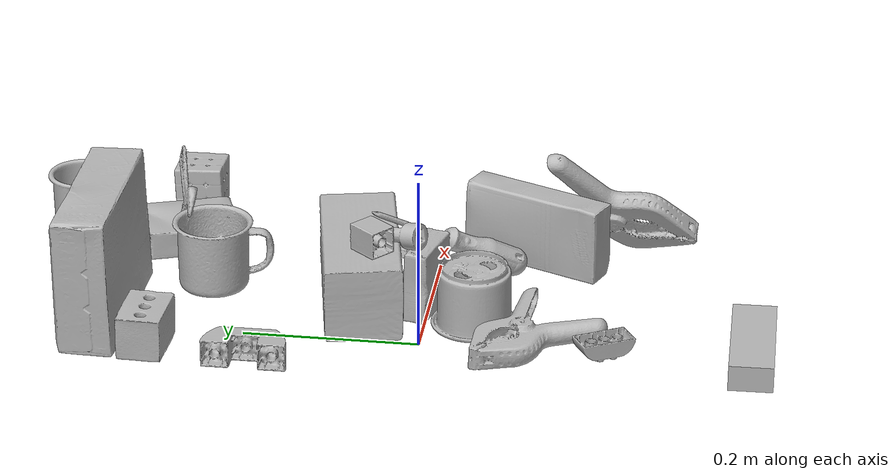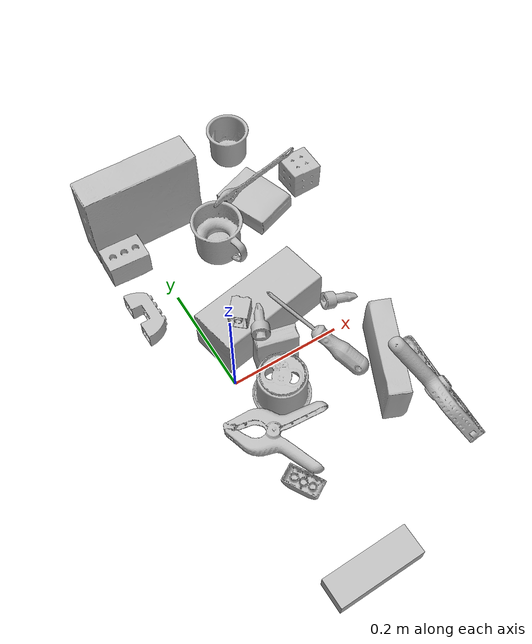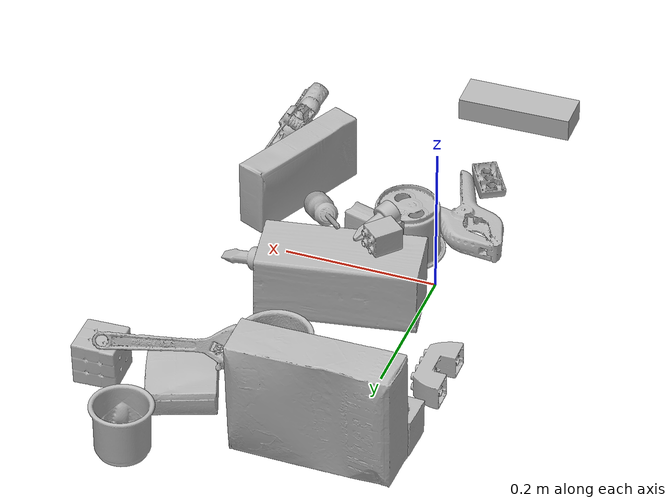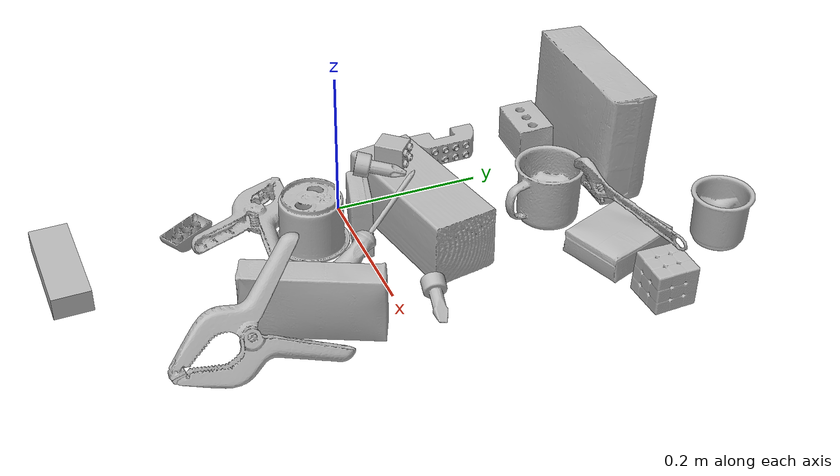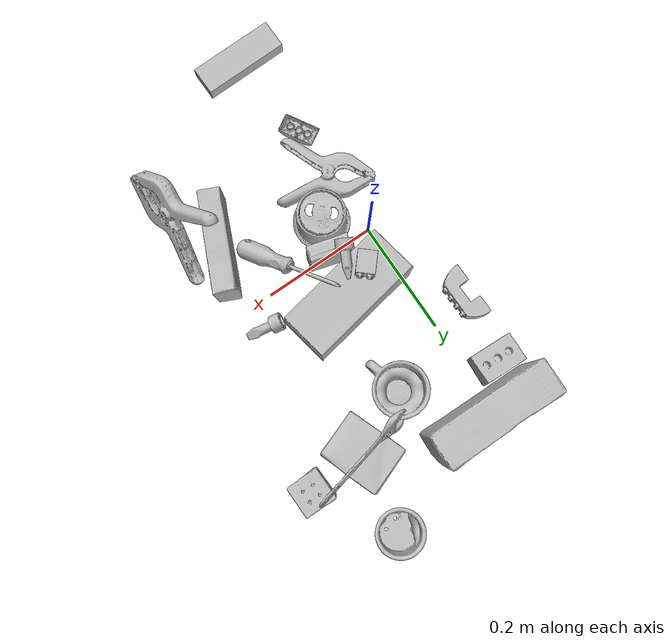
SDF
<sdf version="1.4">
  <world name="default">
    <light name="light1" type="point">
      <pose>0 0 1 0 0 0</pose>
      <diffuse>3 3 3 1</diffuse>
      <specular>3 3 3 1</specular>
    </light>
    <light name="light2" type="point">
      <pose>0 0.5 2 0 0 0</pose>
      <diffuse>1 1 1 1</diffuse>
      <specular>1 1 1 1</specular>
    </light>
    <light name="light3" type="point">
      <pose>0 0.5 2 0 0 0</pose>
      <diffuse>3 3 3 1</diffuse>
      <specular>3 3 3 1</specular>
    </light>
    <scene>
      <ambient>0.7 0.7 0.7</ambient>
    </scene>
    <model name="box21">
      <link name="link_box21">
        <collision name="default">
          <geometry>
            <mesh>
              <uri>model://cracker_box/collision_meshes/collision.obj</uri>
              <scale>1.0 1.0 1.0</scale>
            </mesh>
          </geometry>
          <surface>
            <friction>
              <ode>
                <mu>0.5</mu>
                <mu2>0.5</mu2>
              </ode>
            </friction>
          <contact>
        <ode>
            <max_vel>0</max_vel>
            <min_depth>0.0001</min_depth>
            <kp>1e8</kp>
        </ode>
    </contact></surface>
        </collision>
        <visual name="default">
          <geometry>
            <mesh>
              <uri>model://cracker_box/visual_meshes/visual.dae</uri>
              <scale>1.0 1.0 1.0</scale>
            </mesh>
          </geometry>
        </visual>
        <inertial>
          <mass>1.391977071762085</mass>
          <pose>0.0009464159375056624 0.0002543424488976598 -0.0017029533628374338 -0.000316207597302205 -0.011106489600460226 0.002546794768991959</pose>
          <inertia>
            <ixx>0.0035405685</ixx>
            <iyy>0.0058461735</iyy>
            <izz>0.008343027</izz>
            <ixy>0</ixy>
            <ixz>0</ixz>
            <iyz>0</iyz>
          </inertia>
        </inertial>
      </link>
      <pose>0.0231715627014637 0.3667680323123932 0.08213848620653152 -1.6031941436563448 0.003786476061068361 -0.01660925112276112</pose>
    </model>
    <model name="box22">
      <link name="link_box22">
        <collision name="default">
          <geometry>
            <mesh>
              <uri>model://pudding_box/collision_meshes/collision.obj</uri>
              <scale>1.0 1.0 1.0</scale>
            </mesh>
          </geometry>
          <surface>
            <friction>
              <ode>
                <mu>0.5</mu>
                <mu2>0.5</mu2>
              </ode>
            </friction>
          <contact>
        <ode>
            <max_vel>0</max_vel>
            <min_depth>0.0001</min_depth>
            <kp>1e8</kp>
        </ode>
    </contact></surface>
        </collision>
        <visual name="default">
          <geometry>
            <mesh>
              <uri>model://pudding_box/visual_meshes/visual.dae</uri>
              <scale>1.0 1.0 1.0</scale>
            </mesh>
          </geometry>
        </visual>
        <inertial>
          <mass>0.30066633224487305</mass>
          <pose>0.0004894821904599667 0.0008067885646596551 -0.0005188827635720372 0.005213102250656644 -0.006603798267444238 0.020079828885202117</pose>
          <inertia>
            <ixx>0.0003398878</ixx>
            <iyy>0.00022867892</iyy>
            <izz>0.00050193316</izz>
            <ixy>0</ixy>
            <ixz>0</ixz>
            <iyz>0</iyz>
          </inertia>
        </inertial>
      </link>
      <pose>0.22049348056316376 0.3030432462692261 0.018686022609472275 -3.1415926060938024 -4.5329375091030914e-08 0.3516834753673257</pose>
    </model>
    <model name="box23">
      <link name="link_box23">
        <collision name="default">
          <geometry>
            <mesh>
              <uri>model://rubiks_cube/collision_meshes/collision.obj</uri>
              <scale>1.0 1.0 1.0</scale>
            </mesh>
          </geometry>
          <surface>
            <friction>
              <ode>
                <mu>0.5</mu>
                <mu2>0.5</mu2>
              </ode>
            </friction>
          <contact>
        <ode>
            <max_vel>0</max_vel>
            <min_depth>0.0001</min_depth>
            <kp>1e8</kp>
        </ode>
    </contact></surface>
        </collision>
        <visual name="default">
          <geometry>
            <mesh>
              <uri>model://rubiks_cube/visual_meshes/visual.dae</uri>
              <scale>1.0 1.0 1.0</scale>
            </mesh>
          </geometry>
        </visual>
        <inertial>
          <mass>0.26383036375045776</mass>
          <pose>2.6721041649580002e-05 5.256966323941015e-05 -7.264316082000732e-06 -0.054671492146459166 -0.0981403456898064 -0.03445706250673431</pose>
          <inertia>
            <ixx>0.000145784</ixx>
            <iyy>0.00014510413</iyy>
            <izz>0.00014699204</izz>
            <ixy>0</ixy>
            <ixz>0</ixz>
            <iyz>0</iyz>
          </inertia>
        </inertial>
      </link>
      <pose>0.3242558240890503 0.30823466181755066 0.02931678667664528 3.14142675431577 1.5477297667168166 -3.1145295423986736</pose>
    </model>
    <model name="cup1">
      <link name="link_cup1">
        <collision name="default">
          <geometry>
            <mesh>
              <uri>model://i_cups/collision_meshes/collision.obj</uri>
              <scale>1.0 1.0 1.0</scale>
            </mesh>
          </geometry>
          <surface>
            <friction>
              <ode>
                <mu>0.5</mu>
                <mu2>0.5</mu2>
              </ode>
            </friction>
          <contact>
        <ode>
            <max_vel>0</max_vel>
            <min_depth>0.0001</min_depth>
            <kp>1e8</kp>
        </ode>
    </contact></surface>
        </collision>
        <visual name="default">
          <geometry>
            <mesh>
              <uri>model://i_cups/visual_meshes/visual.dae</uri>
              <scale>1.0 1.0 1.0</scale>
            </mesh>
          </geometry>
        </visual>
        <inertial>
          <mass>0.07817669957876205</mass>
          <pose>0.00011240140884183347 0.00016797371790744364 -0.0008579030982218683 -0.02898336998566683 -0.039872909189422004 -0.34590568894983</pose>
          <inertia>
            <ixx>0.000108236774</ixx>
            <iyy>0.000109190434</iyy>
            <izz>0.00012097212</izz>
            <ixy>0</ixy>
            <ixz>0</ixz>
            <iyz>0</iyz>
          </inertia>
        </inertial>
      </link>
      <pose>0.057385265827178955 -0.056113388389348984 0.0379328727722168 -3.141589090581439 9.417643808764433e-07 -0.4371911840595431</pose>
    </model>
    <model name="cup2">
      <link name="link_cup2">
        <collision name="default">
          <geometry>
            <mesh>
              <uri>model://f_cups/collision_meshes/collision.obj</uri>
              <scale>1.0 1.0 1.0</scale>
            </mesh>
          </geometry>
          <surface>
            <friction>
              <ode>
                <mu>0.5</mu>
                <mu2>0.5</mu2>
              </ode>
            </friction>
          <contact>
        <ode>
            <max_vel>0</max_vel>
            <min_depth>0.0001</min_depth>
            <kp>1e8</kp>
        </ode>
    </contact></surface>
        </collision>
        <visual name="default">
          <geometry>
            <mesh>
              <uri>model://f_cups/visual_meshes/visual.dae</uri>
              <scale>1.0 1.0 1.0</scale>
            </mesh>
          </geometry>
        </visual>
        <inertial>
          <mass>0.06179655343294144</mass>
          <pose>-0.003171469084918499 -0.0006240077782422304 -0.0036555363330990076 0.786228783809594 -0.26079147583364887 -0.18237327348602217</pose>
          <inertia>
            <ixx>5.8090412e-05</ixx>
            <iyy>6.0937502e-05</iyy>
            <izz>6.3437656e-05</izz>
            <ixy>0</ixy>
            <ixz>0</ixz>
            <iyz>0</iyz>
          </inertia>
        </inertial>
      </link>
      <pose>0.243989959359169 0.4375811517238617 0.036306001245975494 1.059312034043575e-06 -5.228878302030595e-07 -0.3876154596257688</pose>
    </model>
    <model name="box11">
      <link name="link_box11">
        <collision name="default">
          <geometry>
            <mesh>
              <uri>model://jenga/collision_meshes/collision.obj</uri>
              <scale>1.0 1.0 1.0</scale>
            </mesh>
          </geometry>
          <surface>
            <friction>
              <ode>
                <mu>0.5</mu>
                <mu2>0.5</mu2>
              </ode>
            </friction>
          <contact>
        <ode>
            <max_vel>0</max_vel>
            <min_depth>0.0001</min_depth>
            <kp>1e8</kp>
        </ode>
    </contact></surface>
        </collision>
        <visual name="default">
          <geometry>
            <mesh>
              <uri>model://jenga/visual_meshes/visual.dae</uri>
              <scale>1.0 1.0 1.0</scale>
            </mesh>
          </geometry>
        </visual>
        <inertial>
          <mass>0.2841220796108246</mass>
          <pose>-2.5028555228345795e-07 -0.00010250010382151231 -4.0923401684267446e-05 0.0 -7.34215461761844e-07 0.0</pose>
          <inertia>
            <ixx>7.8623474e-05</ixx>
            <iyy>0.00053275056</iyy>
            <izz>0.0005687565</izz>
            <ixy>0</ixy>
            <ixz>0</ixz>
            <iyz>0</iyz>
          </inertia>
        </inertial>
      </link>
      <pose>0.015380322001874447 -0.3732602596282959 0.014999999664723873 1.9886796342013444e-08 -1.4828414891635438e-08 -3.1215657149391225</pose>
    </model>
    <model name="box12">
      <link name="link_box12">
        <collision name="default">
          <geometry>
            <mesh>
              <uri>model://wood_block/collision_meshes/collision.obj</uri>
              <scale>1.0 1.0 1.0</scale>
            </mesh>
          </geometry>
          <surface>
            <friction>
              <ode>
                <mu>0.5</mu>
                <mu2>0.5</mu2>
              </ode>
            </friction>
          <contact>
        <ode>
            <max_vel>0</max_vel>
            <min_depth>0.0001</min_depth>
            <kp>1e8</kp>
        </ode>
    </contact></surface>
        </collision>
        <visual name="default">
          <geometry>
            <mesh>
              <uri>model://wood_block/visual_meshes/visual.dae</uri>
              <scale>1.0 1.0 1.0</scale>
            </mesh>
          </geometry>
        </visual>
        <inertial>
          <mass>1.792885661125183</mass>
          <pose>-5.813315510749817e-06 -0.0005708095268346369 0.0002640858292579651 -0.0522099864925601 -0.005192695938411627 -0.006861379223067069</pose>
          <inertia>
            <ixx>0.0023991528</ixx>
            <iyy>0.007578924</iyy>
            <izz>0.007550574</izz>
            <ixy>0</ixy>
            <ixz>0</ixz>
            <iyz>0</iyz>
          </inertia>
        </inertial>
      </link>
      <pose>0.09717102348804474 0.07990561425685883 0.04570067301392555 1.5681283942297528 -0.006939168553763052 0.1878361685019306</pose>
    </model>
    <model name="box13">
      <link name="link_box13">
        <collision name="default">
          <geometry>
            <mesh>
              <uri>model://sugar_box/collision_meshes/collision.obj</uri>
              <scale>1.0 1.0 1.0</scale>
            </mesh>
          </geometry>
          <surface>
            <friction>
              <ode>
                <mu>0.5</mu>
                <mu2>0.5</mu2>
              </ode>
            </friction>
          <contact>
        <ode>
            <max_vel>0</max_vel>
            <min_depth>0.0001</min_depth>
            <kp>1e8</kp>
        </ode>
    </contact></surface>
        </collision>
        <visual name="default">
          <geometry>
            <mesh>
              <uri>model://sugar_box/visual_meshes/visual.dae</uri>
              <scale>1.0 1.0 1.0</scale>
            </mesh>
          </geometry>
        </visual>
        <inertial>
          <mass>0.8825364708900452</mass>
          <pose>0.0010343727190047503 3.8491099985549226e-05 -0.00036364805418998003 -0.0004046260965456432 0.0010506635219437153 0.002615379021860657</pose>
          <inertia>
            <ixx>0.0007353271</ixx>
            <iyy>0.0023767278</iyy>
            <izz>0.002845227</izz>
            <ixy>0</ixy>
            <ixz>0</ixz>
            <iyz>0</iyz>
          </inertia>
        </inertial>
      </link>
      <pose>0.2250697761774063 -0.11081831902265549 0.04600605368614197 1.5808644410501993 0.007149817110494188 1.1480804727086182</pose>
    </model>
    <model name="box14">
      <link name="link_box14">
        <collision name="default">
          <geometry>
            <mesh>
              <uri>model://gelatin_box/collision_meshes/collision.obj</uri>
              <scale>1.0 1.0 1.0</scale>
            </mesh>
          </geometry>
          <surface>
            <friction>
              <ode>
                <mu>0.5</mu>
                <mu2>0.5</mu2>
              </ode>
            </friction>
          <contact>
        <ode>
            <max_vel>0</max_vel>
            <min_depth>0.0001</min_depth>
            <kp>1e8</kp>
        </ode>
    </contact></surface>
        </collision>
        <visual name="default">
          <geometry>
            <mesh>
              <uri>model://gelatin_box/visual_meshes/visual.dae</uri>
              <scale>1.0 1.0 1.0</scale>
            </mesh>
          </geometry>
        </visual>
        <inertial>
          <mass>0.13771659135818481</mass>
          <pose>0.0004319618456065655 0.00011156871914863586 -0.0003640321083366871 -0.0010503722043797578 -0.004755819155943452 0.016440555746729004</pose>
          <inertia>
            <ixx>9.721668e-05</ixx>
            <iyy>6.944137e-05</iyy>
            <izz>0.00014798543</izz>
            <ixy>0</ixy>
            <ixz>0</ixz>
            <iyz>0</iyz>
          </inertia>
        </inertial>
      </link>
      <pose>0.08143404871225357 0.0012213014997541904 0.044878505170345306 -1.5942632282097873 -0.0022164868465548403 2.880125987056805</pose>
    </model>
    <model name="cup15">
      <link name="link_cup15">
        <collision name="default">
          <geometry>
            <mesh>
              <uri>model://mug/collision_meshes/collision.obj</uri>
              <scale>1.0 1.0 1.0</scale>
            </mesh>
          </geometry>
          <surface>
            <friction>
              <ode>
                <mu>0.5</mu>
                <mu2>0.5</mu2>
              </ode>
            </friction>
          <contact>
        <ode>
            <max_vel>0</max_vel>
            <min_depth>0.0001</min_depth>
            <kp>1e8</kp>
        </ode>
    </contact></surface>
        </collision>
        <visual name="default">
          <geometry>
            <mesh>
              <uri>model://mug/visual_meshes/visual.dae</uri>
              <scale>1.0 1.0 1.0</scale>
            </mesh>
          </geometry>
        </visual>
        <inertial>
          <mass>0.09286905825138092</mass>
          <pose>0.009571668691933155 0.0008143252343870699 -0.010947328992187977 -0.12983168029791675 0.08737751579099198 0.05507277032354666</pose>
          <inertia>
            <ixx>9.2248694e-05</ixx>
            <iyy>0.00010303637</iyy>
            <izz>0.00011916295</izz>
            <ixy>0</ixy>
            <ixz>0</ixz>
            <iyz>0</iyz>
          </inertia>
        </inertial>
      </link>
      <pose>0.11939679831266403 0.24370037019252777 0.04094912111759186 -9.667820476500931e-07 1.8693535665966724e-06 1.7928238654823647</pose>
    </model>
    <model name="toy1">
      <link name="link_toy1">
        <collision name="default">
          <geometry>
            <mesh>
              <uri>model://e_toy_airplane/collision_meshes/collision.obj</uri>
              <scale>1.0 1.0 1.0</scale>
            </mesh>
          </geometry>
          <surface>
            <friction>
              <ode>
                <mu>0.5</mu>
                <mu2>0.5</mu2>
              </ode>
            </friction>
          <contact>
        <ode>
            <max_vel>0</max_vel>
            <min_depth>0.0001</min_depth>
            <kp>1e8</kp>
        </ode>
    </contact></surface>
        </collision>
        <visual name="default">
          <geometry>
            <mesh>
              <uri>model://e_toy_airplane/visual_meshes/visual.dae</uri>
              <scale>1.0 1.0 1.0</scale>
            </mesh>
          </geometry>
        </visual>
        <inertial>
          <mass>0.023911256343126297</mass>
          <pose>0.00011740469199139625 -2.2482965505332686e-05 -0.011187205091118813 0.005518515901869279 0.009228280443904262 0.15041685177791278</pose>
          <inertia>
            <ixx>7.297989e-06</ixx>
            <iyy>7.223337e-06</iyy>
            <izz>2.1933329e-06</izz>
            <ixy>0</ixy>
            <ixz>0</ixz>
            <iyz>0</iyz>
          </inertia>
        </inertial>
      </link>
      <pose>0.24017572402954102 0.04288094863295555 0.010808547958731651 -2.1451383691285293 1.1027870418922383 -2.27730299232838</pose>
    </model>
    <model name="toy2">
      <link name="link_toy2">
        <collision name="default">
          <geometry>
            <mesh>
              <uri>model://e_lego_duplo/collision_meshes/collision.obj</uri>
              <scale>1.0 1.0 1.0</scale>
            </mesh>
          </geometry>
          <surface>
            <friction>
              <ode>
                <mu>0.5</mu>
                <mu2>0.5</mu2>
              </ode>
            </friction>
          <contact>
        <ode>
            <max_vel>0</max_vel>
            <min_depth>0.0001</min_depth>
            <kp>1e8</kp>
        </ode>
    </contact></surface>
        </collision>
        <visual name="default">
          <geometry>
            <mesh>
              <uri>model://e_lego_duplo/visual_meshes/visual.dae</uri>
              <scale>1.0 1.0 1.0</scale>
            </mesh>
          </geometry>
        </visual>
        <inertial>
          <mass>0.11075761169195175</mass>
          <pose>0.00032560486579313874 0.0002348541165702045 0.0019521445501595736 -0.02256776115193108 -6.825012723321977e-05 -0.007625153470106003</pose>
          <inertia>
            <ixx>2.3096625e-05</ixx>
            <iyy>9.479449e-05</iyy>
            <izz>9.231077e-05</izz>
            <ixy>0</ixy>
            <ixz>0</ixz>
            <iyz>0</iyz>
          </inertia>
        </inertial>
      </link>
      <pose>-0.06450846046209335 0.18496045470237732 0.016517825424671173 -1.5715846118370023 0.005903404616672074 -1.5641425968695586</pose>
    </model>
    <model name="toy3">
      <link name="link_toy3">
        <collision name="default">
          <geometry>
            <mesh>
              <uri>model://foam_brick/collision_meshes/collision.obj</uri>
              <scale>1.0 1.0 1.0</scale>
            </mesh>
          </geometry>
          <surface>
            <friction>
              <ode>
                <mu>0.5</mu>
                <mu2>0.5</mu2>
              </ode>
            </friction>
          <contact>
        <ode>
            <max_vel>0</max_vel>
            <min_depth>0.0001</min_depth>
            <kp>1e8</kp>
        </ode>
    </contact></surface>
        </collision>
        <visual name="default">
          <geometry>
            <mesh>
              <uri>model://foam_brick/visual_meshes/visual.dae</uri>
              <scale>1.0 1.0 1.0</scale>
            </mesh>
          </geometry>
        </visual>
        <inertial>
          <mass>0.18736568093299866</mass>
          <pose>-0.0002522472059354186 0.0003458441933616996 -0.0002532101352699101 -0.2940186982087205 0.017274432871393446 -0.000744985669109422</pose>
          <inertia>
            <ixx>8.184482e-05</ixx>
            <iyy>0.00013066948</iyy>
            <izz>0.00013233014</izz>
            <ixy>0</ixy>
            <ixz>0</ixz>
            <iyz>0</iyz>
          </inertia>
        </inertial>
      </link>
      <pose>-0.04591216892004013 0.30241674184799194 0.025922810658812523 0.013416848575051158 0.004152988476289087 -0.03492252784730621</pose>
    </model>
    <model name="toy4">
      <link name="link_toy4">
        <collision name="default">
          <geometry>
            <mesh>
              <uri>model://b_lego_duplo/collision_meshes/collision.obj</uri>
              <scale>1.0 1.0 1.0</scale>
            </mesh>
          </geometry>
          <surface>
            <friction>
              <ode>
                <mu>0.5</mu>
                <mu2>0.5</mu2>
              </ode>
            </friction>
          <contact>
        <ode>
            <max_vel>0</max_vel>
            <min_depth>0.0001</min_depth>
            <kp>1e8</kp>
        </ode>
    </contact></surface>
        </collision>
        <visual name="default">
          <geometry>
            <mesh>
              <uri>model://b_lego_duplo/visual_meshes/visual.dae</uri>
              <scale>1.0 1.0 1.0</scale>
            </mesh>
          </geometry>
        </visual>
        <inertial>
          <mass>0.025353357195854187</mass>
          <pose>-0.00011053043272113428 -9.152237907983363e-06 0.001929429010488093 -0.03749469050897604 -0.02635423063131295 0.4518929125976256</pose>
          <inertia>
            <ixx>5.188755e-06</ixx>
            <iyy>5.223636e-06</iyy>
            <izz>4.623011e-06</izz>
            <ixy>0</ixy>
            <ixz>0</ixz>
            <iyz>0</iyz>
          </inertia>
        </inertial>
      </link>
      <pose>0.04999538138508797 0.0610412061214447 0.10599298775196075 1.4116745683844931 -1.5590536905100012 2.5834098148048574</pose>
    </model>
    <model name="toy5">
      <link name="link_toy5">
        <collision name="default">
          <geometry>
            <mesh>
              <uri>model://d_toy_airplane/collision_meshes/collision.obj</uri>
              <scale>1.0 1.0 1.0</scale>
            </mesh>
          </geometry>
          <surface>
            <friction>
              <ode>
                <mu>0.5</mu>
                <mu2>0.5</mu2>
              </ode>
            </friction>
          <contact>
        <ode>
            <max_vel>0</max_vel>
            <min_depth>0.0001</min_depth>
            <kp>1e8</kp>
        </ode>
    </contact></surface>
        </collision>
        <visual name="default">
          <geometry>
            <mesh>
              <uri>model://d_toy_airplane/visual_meshes/visual.dae</uri>
              <scale>1.0 1.0 1.0</scale>
            </mesh>
          </geometry>
        </visual>
        <inertial>
          <mass>0.012228579260408878</mass>
          <pose>9.410289931111038e-05 -5.8093195548281074e-05 -0.011728097684681416 0.00026677116185868234 0.004678984415060646 0.5194210089241819</pose>
          <inertia>
            <ixx>3.6658907e-06</ixx>
            <iyy>3.6686554e-06</iyy>
            <izz>1.1067563e-06</izz>
            <ixy>0</ixy>
            <ixz>0</ixz>
            <iyz>0</iyz>
          </inertia>
        </inertial>
      </link>
      <pose>0.07039135694503784 0.03445249795913696 0.10076542943716049 1.7560373112779677 -0.1990316021461559 2.634665040177312</pose>
    </model>
    <model name="toy6">
      <link name="link_toy6">
        <collision name="default">
          <geometry>
            <mesh>
              <uri>model://a_lego_duplo/collision_meshes/collision.obj</uri>
              <scale>1.0 1.0 1.0</scale>
            </mesh>
          </geometry>
          <surface>
            <friction>
              <ode>
                <mu>0.5</mu>
                <mu2>0.5</mu2>
              </ode>
            </friction>
          <contact>
        <ode>
            <max_vel>0</max_vel>
            <min_depth>0.0001</min_depth>
            <kp>1e8</kp>
        </ode>
    </contact></surface>
        </collision>
        <visual name="default">
          <geometry>
            <mesh>
              <uri>model://a_lego_duplo/visual_meshes/visual.dae</uri>
              <scale>1.0 1.0 1.0</scale>
            </mesh>
          </geometry>
        </visual>
        <inertial>
          <mass>0.012199957855045795</mass>
          <pose>-0.00011337617615936324 0.00018517585704103112 0.0003692606114782393 -0.014116995063493705 -0.0001256559143483996 6.140869386576653e-05</pose>
          <inertia>
            <ixx>1.564132e-06</ixx>
            <iyy>3.5039989e-06</iyy>
            <izz>4.340482e-06</izz>
            <ixy>0</ixy>
            <ixz>0</ixz>
            <iyz>0</iyz>
          </inertia>
        </inertial>
      </link>
      <pose>0.0005465407157316804 -0.20843477547168732 0.012124750763177872 -3.141285857817841 -0.015580260256467873 2.0973969527765193</pose>
    </model>
    <model name="hardware1">
      <link name="link_hardware1">
        <collision name="default">
          <geometry>
            <mesh>
              <uri>model://phillips_screwdriver/collision_meshes/collision.obj</uri>
              <scale>1.0 1.0 1.0</scale>
            </mesh>
          </geometry>
          <surface>
            <friction>
              <ode>
                <mu>0.5</mu>
                <mu2>0.5</mu2>
              </ode>
            </friction>
          <contact>
        <ode>
            <max_vel>0</max_vel>
            <min_depth>0.0001</min_depth>
            <kp>1e8</kp>
        </ode>
    </contact></surface>
        </collision>
        <visual name="default">
          <geometry>
            <mesh>
              <uri>model://phillips_screwdriver/visual_meshes/visual.dae</uri>
              <scale>1.0 1.0 1.0</scale>
            </mesh>
          </geometry>
        </visual>
        <inertial>
          <mass>0.06495495140552521</mass>
          <pose>-0.04777183011174202 0.0010362302418798208 -0.00045555501128546894 -0.1571888451297522 0.005850998841919991 -0.0021567342335393844</pose>
          <inertia>
            <ixx>7.63154e-06</ixx>
            <iyy>9.568614e-05</iyy>
            <izz>9.576745e-05</izz>
            <ixy>0</ixy>
            <ixz>0</ixz>
            <iyz>0</iyz>
          </inertia>
        </inertial>
      </link>
      <pose>0.15127888321876526 -0.018297098577022552 0.058541908860206604 -2.513701517151973 -0.4883995300885812 2.0801940971490027</pose>
    </model>
    <model name="hardware2">
      <link name="link_hardware2">
        <collision name="default">
          <geometry>
            <mesh>
              <uri>model://extra_large_clamp/collision_meshes/collision.obj</uri>
              <scale>1.0 1.0 1.0</scale>
            </mesh>
          </geometry>
          <surface>
            <friction>
              <ode>
                <mu>0.5</mu>
                <mu2>0.5</mu2>
              </ode>
            </friction>
          <contact>
        <ode>
            <max_vel>0</max_vel>
            <min_depth>0.0001</min_depth>
            <kp>1e8</kp>
        </ode>
    </contact></surface>
        </collision>
        <visual name="default">
          <geometry>
            <mesh>
              <uri>model://extra_large_clamp/visual_meshes/visual.dae</uri>
              <scale>1.0 1.0 1.0</scale>
            </mesh>
          </geometry>
        </visual>
        <inertial>
          <mass>0.19384004175662994</mass>
          <pose>0.003232018556445837 -7.61538467486389e-05 0.00031721554114483297 0.013786997874205318 -0.000506684650300538 -0.0008936209831217155</pose>
          <inertia>
            <ixx>0.00029460518</ixx>
            <iyy>0.00050721905</iyy>
            <izz>0.0007749263</izz>
            <ixy>0</ixy>
            <ixz>0</ixz>
            <iyz>0</iyz>
          </inertia>
        </inertial>
      </link>
      <pose>0.2612501382827759 -0.19899755716323853 0.05175844952464104 2.104918274920274 0.2481984807317456 -1.4540732328244224</pose>
    </model>
    <model name="hardware3">
      <link name="link_hardware3">
        <collision name="default">
          <geometry>
            <mesh>
              <uri>model://large_clamp/collision_meshes/collision.obj</uri>
              <scale>1.0 1.0 1.0</scale>
            </mesh>
          </geometry>
          <surface>
            <friction>
              <ode>
                <mu>0.5</mu>
                <mu2>0.5</mu2>
              </ode>
            </friction>
          <contact>
        <ode>
            <max_vel>0</max_vel>
            <min_depth>0.0001</min_depth>
            <kp>1e8</kp>
        </ode>
    </contact></surface>
        </collision>
        <visual name="default">
          <geometry>
            <mesh>
              <uri>model://large_clamp/visual_meshes/visual.dae</uri>
              <scale>1.0 1.0 1.0</scale>
            </mesh>
          </geometry>
        </visual>
        <inertial>
          <mass>0.09168914705514908</mass>
          <pose>0.006369357462972403 0.0003585686208680272 -0.0001839803735492751 -0.0021330784539622108 0.00967158945845961 0.026633182273159455</pose>
          <inertia>
            <ixx>8.0894904e-05</ixx>
            <iyy>0.00015362375</iyy>
            <izz>0.00022223631</izz>
            <ixy>0</ixy>
            <ixz>0</ixz>
            <iyz>0</iyz>
          </inertia>
        </inertial>
      </link>
      <pose>0.004967930726706982 -0.11622169613838196 0.018076645210385323 3.12267651821635 0.01989893410653574 2.514032430275298</pose>
    </model>
    <model name="hardware4">
      <link name="link_hardware4">
        <collision name="default">
          <geometry>
            <mesh>
              <uri>model://adjustable_wrench/collision_meshes/collision.obj</uri>
              <scale>1.0 1.0 1.0</scale>
            </mesh>
          </geometry>
          <surface>
            <friction>
              <ode>
                <mu>0.5</mu>
                <mu2>0.5</mu2>
              </ode>
            </friction>
          <contact>
        <ode>
            <max_vel>0</max_vel>
            <min_depth>0.0001</min_depth>
            <kp>1e8</kp>
        </ode>
    </contact></surface>
        </collision>
        <visual name="default">
          <geometry>
            <mesh>
              <uri>model://adjustable_wrench/visual_meshes/visual.dae</uri>
              <scale>1.0 1.0 1.0</scale>
            </mesh>
          </geometry>
        </visual>
        <inertial>
          <mass>0.03454793244600296</mass>
          <pose>0.03740980476140976 -0.0028968879487365484 -0.001114922808483243 -0.01447336202596381 0.006656025927011416 -0.010954184309206349</pose>
          <inertia>
            <ixx>7.0707333e-06</ixx>
            <iyy>8.275469e-05</iyy>
            <izz>8.944984e-05</izz>
            <ixy>0</ixy>
            <ixz>0</ixz>
            <iyz>0</iyz>
          </inertia>
        </inertial>
      </link>
      <pose>0.22261011600494385 0.30834853649139404 0.07008223235607147 -1.8334980232891764 -0.04532044156413194 -2.9015276339048306</pose>
    </model>
  <physics type="ode">
      <max_contacts>50</max_contacts>
      <ode>
        <solver>
          <type>quick</type>
          <iters>75</iters>
        </solver>
        <constraints>
          <contact_max_correcting_vel>0</contact_max_correcting_vel>
          <contact_surface_layer>0</contact_surface_layer>
        </constraints>
      </ode>
    </physics></world>
</sdf>
